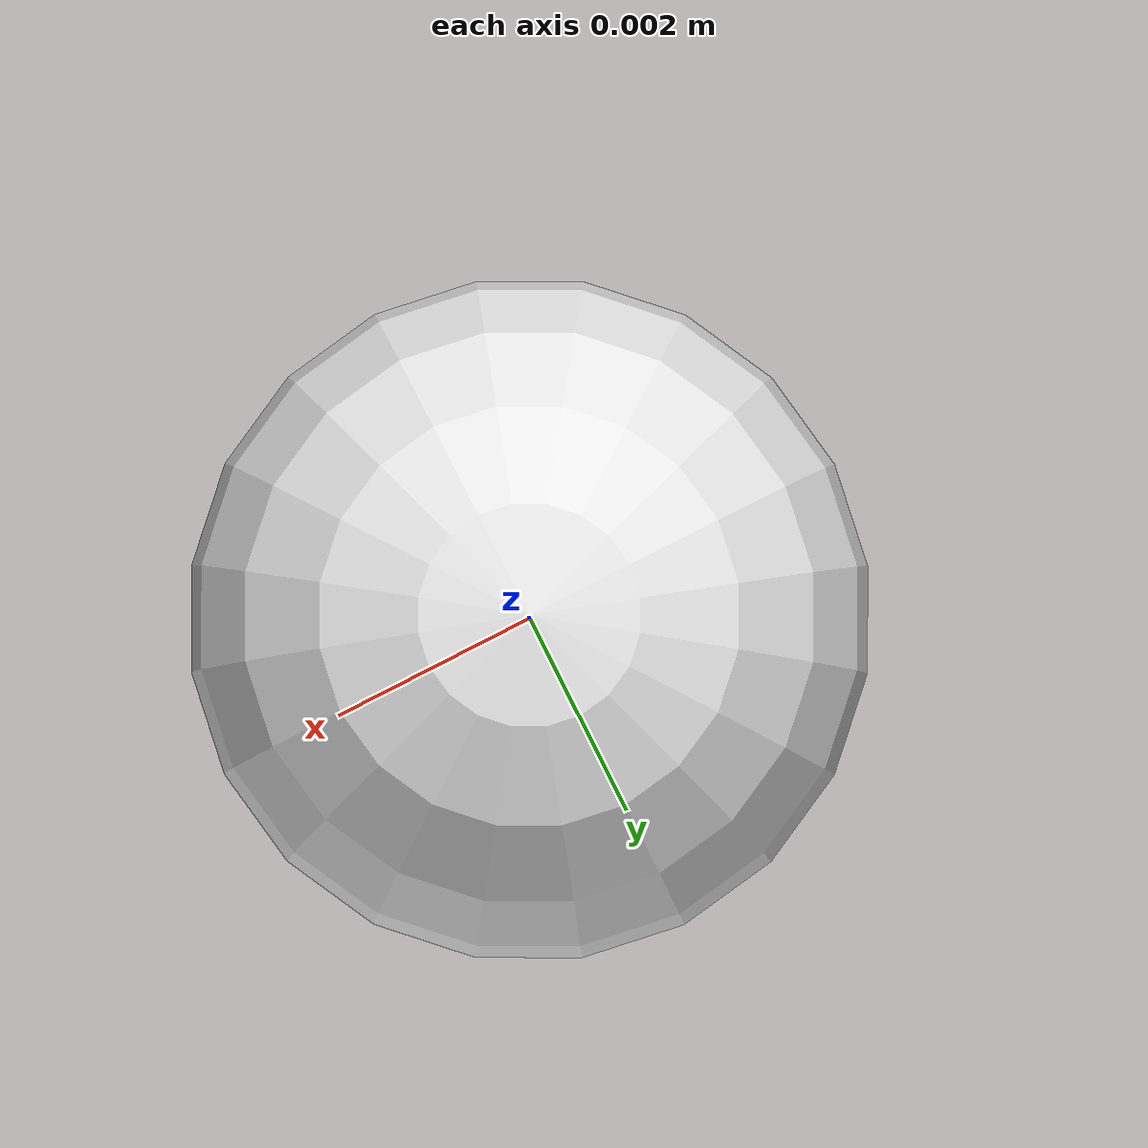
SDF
<sdf version="1.9">
    <model name="motion_capture_rigid_body">
        <link name="motion_capture_rigid_body">
            <visual name="visual0">
              <geometry>
                <sphere>
                  <!-- 1/4" marker bead -->
                  <radius>0.0032</radius>
                </sphere>
              </geometry>
              <material>
                <diffuse>0.9 0.9 0.9 1.0</diffuse>
              </material>
            </visual>
            <collision name="collision0">
              <geometry>
                <sphere>
                  <!-- 1/4" marker bead -->
                  <radius>0.0032</radius>
                </sphere>
              </geometry>
            </collision>
        </link>
        <plugin filename="nexus_gazebo" name="nexus_gazebo::MotionCaptureRigidBody"/>
    </model>
</sdf>
